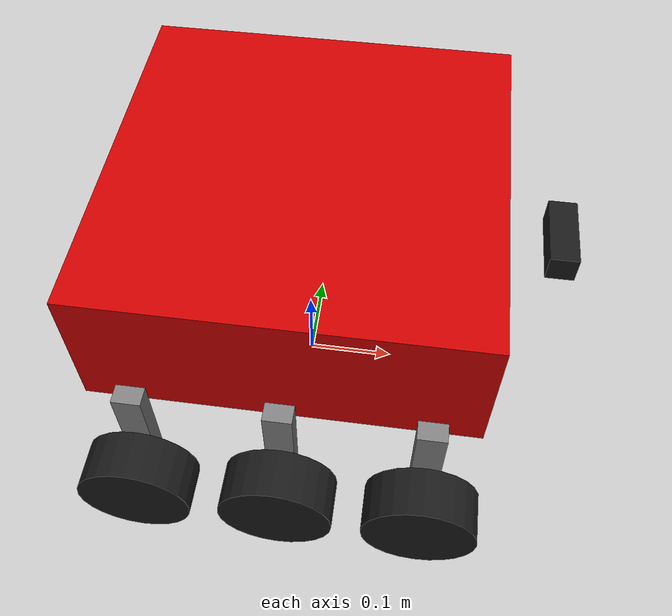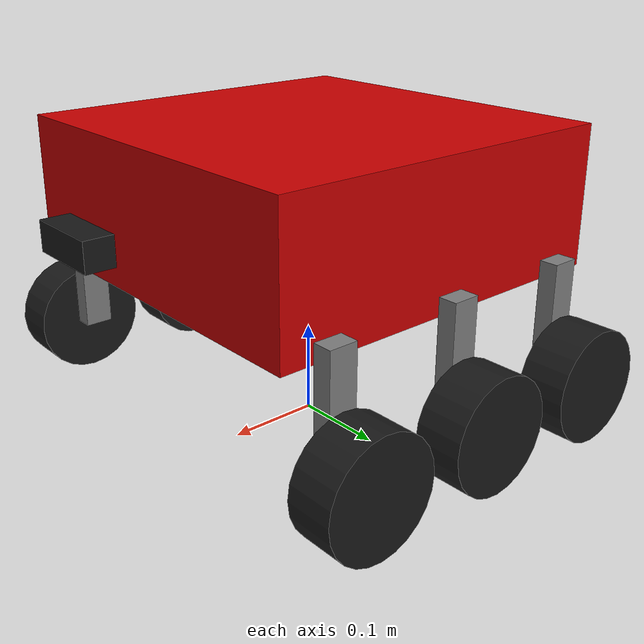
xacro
<?xml version="1.0"?>
<robot xmlns:xacro="http://www.ros.org/wiki/xacro" name="my_robot">

  <!-- Include macro and material definitions -->
  <xacro:include filename="$(find my_robot_description)/urdf/macros.xacro"/>
  <xacro:include filename="$(find my_robot_description)/urdf/materials.xacro"/>
  <xacro:include filename="$(find my_robot_description)/urdf/gazebo.xacro"/>

  <!-- Link name properties for cleaner references -->
  <xacro:property name="base_link_name" value="base_link"/>
  <xacro:property name="base_footprint_name" value="base_footprint"/>

  <!-- Robot Dimensions (xacro properties for easy modification) -->
  <!-- Base dimensions - SQUARE for Mars rover style -->
  <xacro:property name="base_length" value="0.4"/>
  <xacro:property name="base_width" value="0.4"/>
  <xacro:property name="base_height" value="0.15"/>
  <xacro:property name="base_mass" value="5.0"/>

  <!-- Wheel dimensions - Smaller for better proportions -->
  <xacro:property name="wheel_radius" value="0.06"/>
  <xacro:property name="wheel_length" value="0.05"/>
  <xacro:property name="wheel_mass" value="0.6"/>

  <!-- Suspension arm dimensions (rectangular links) -->
  <xacro:property name="arm_length" value="0.03"/>
  <xacro:property name="arm_width" value="0.02"/>
  <xacro:property name="arm_height" value="0.12"/>
  <xacro:property name="arm_mass" value="0.2"/>

  <!-- Arm position offsets: control arm position relative to wheel -->
  <!-- X offset: move arm forward (+) or backward (-) from wheel center -->
  <xacro:property name="arm_x_offset" value="0"/>  <!-- Forward/backward offset -->

  <!-- Arm Z offset control: adjust arm vertical position relative to base -->
  <!-- Default: arm top touches base bottom. Increase to lower arms, decrease to raise -->
  <xacro:property name="arm_z_adjustment" value="0"/>  <!-- Additional vertical offset for arms -->

  <!-- Z offset: arms attach below the base, top of arm flush with bottom of base -->
  <!-- Arm center should be at: -base_height/2 (base bottom) - arm_height/2 (to center of arm) + adjustment -->
  <!-- This ensures arm top is at -base_height/2 (touching base bottom) by default -->
  <xacro:property name="arm_z_offset" value="${-base_height/2 - arm_height/2 + arm_z_adjustment}"/>

  <!-- Wheel positioning -->

  <!-- Z offset: arms attach below the base, top of arm flush with bottom of base -->
  <!-- Arm center should be at: -base_height/2 (base bottom) - arm_height/2 (to center of arm) + adjustment -->
  <!-- This ensures arm top is at -base_height/2 (touching base bottom) by default -->
  <xacro:property name="arm_z_offset" value="${-base_height/2 - arm_height/2 + arm_z_adjustment}"/>
  <!-- Y offset: arms extend from sides of base (outside the base body) -->
  <xacro:property name="arm_y_offset" value="0.21"/>
  <!-- X positions: front, middle, rear (evenly spaced along base length) -->
  <xacro:property name="wheel_x_front" value="0.15"/>
  <xacro:property name="wheel_x_middle" value="0.0"/>
  <xacro:property name="wheel_x_rear" value="-0.15"/>

  <!-- Wheel offset relative to arm link (fine-tune wheel position) -->
  <!-- These control where the wheel attaches to the arm -->
  <!-- LEFT WHEELS -->
  <xacro:property name="wheel_offset_x_left" value="0"/>           <!-- Forward/backward from arm center -->
  <xacro:property name="wheel_offset_y_left" value="0.035"/>           <!-- Outward/inward from arm center -->
  <xacro:property name="wheel_offset_z_left" value="${-arm_height/2}"/>  <!-- Vertical (default: arm bottom) -->

  <!-- RIGHT WHEELS -->
  <xacro:property name="wheel_offset_x_right" value="0"/>          <!-- Forward/backward from arm center -->
  <xacro:property name="wheel_offset_y_right" value="-0.035"/>          <!-- Outward/inward from arm center -->
  <xacro:property name="wheel_offset_z_right" value="${-arm_height/2}"/> <!-- Vertical (default: arm bottom) -->

  <!-- Arm Z offset control: adjust arm vertical position relative to base -->
  <!-- Default: arm top touches base bottom. Increase to lower arms, decrease to raise -->
  <xacro:property name="arm_z_adjustment" value="0.02"/>  <!-- Additional vertical offset for arms -->

  <!-- BASE FOOTPRINT (Ground reference point)   -->
  <!-- This link is at ground level (z=0)        -->
  <link name="${base_footprint_name}">
    <!-- Empty link - just a reference frame -->
  </link>

  <!-- Joint connecting footprint to base_link -->
  <!-- Z offset calculated to place base above ground with wheels touching -->
  <joint name="base_footprint_joint" type="fixed">
    <parent link="${base_footprint_name}"/>
    <child link="${base_link_name}"/>
    <!-- Height = base_height/2 + arm_height + wheel_radius -->
    <origin xyz="0 0 ${base_height/2 + arm_height + wheel_radius}" rpy="0 0 0"/>
  </joint>

  <!-- BASE LINK (Main robot body - SQUARE, RED) -->
  <link name="${base_link_name}">

    <!-- Visual representation -->
    <visual>
      <geometry>
        <box size="${base_length} ${base_width} ${base_height}"/>
      </geometry>
      <origin xyz="0 0 0" rpy="0 0 0"/>
      <material name="red"/>
    </visual>

    <!-- Collision geometry (matches visual) -->
    <collision>
      <geometry>
        <box size="${base_length} ${base_width} ${base_height}"/>
      </geometry>
      <origin xyz="0 0 0" rpy="0 0 0"/>
    </collision>

    <!-- Inertial properties using box macro -->
    <xacro:box_inertia m="${base_mass}" x="${base_length}" y="${base_width}" z="${base_height}"/>

  </link>

  <!-- SUSPENSION ARMS + WHEELS (Mars rover style) -->
  <!-- 6 rectangular arms extending down from base -->
  <!-- 6 wheels attached to bottom of arms         -->

  <!-- LEFT SIDE -->
  <xacro:suspension_wheel_macro prefix="left_front"
                                x_pos="${wheel_x_front}"
                                y_pos="${arm_y_offset}"
                                wheel_offset_x="${wheel_offset_x_left}"
                                wheel_offset_y="${wheel_offset_y_left}"
                                wheel_offset_z="${wheel_offset_z_left}"/>

  <xacro:suspension_wheel_macro prefix="left_middle"
                                x_pos="${wheel_x_middle}"
                                y_pos="${arm_y_offset}"
                                wheel_offset_x="${wheel_offset_x_left}"
                                wheel_offset_y="${wheel_offset_y_left}"
                                wheel_offset_z="${wheel_offset_z_left}"/>

  <xacro:suspension_wheel_macro prefix="left_rear"
                                x_pos="${wheel_x_rear}"
                                y_pos="${arm_y_offset}"
                                wheel_offset_x="${wheel_offset_x_left}"
                                wheel_offset_y="${wheel_offset_y_left}"
                                wheel_offset_z="${wheel_offset_z_left}"/>

  <!-- RIGHT SIDE -->
  <xacro:suspension_wheel_macro prefix="right_front"
                                x_pos="${wheel_x_front}"
                                y_pos="${-arm_y_offset}"
                                wheel_offset_x="${wheel_offset_x_right}"
                                wheel_offset_y="${wheel_offset_y_right}"
                                wheel_offset_z="${wheel_offset_z_right}"/>

  <xacro:suspension_wheel_macro prefix="right_middle"
                                x_pos="${wheel_x_middle}"
                                y_pos="${-arm_y_offset}"
                                wheel_offset_x="${wheel_offset_x_right}"
                                wheel_offset_y="${wheel_offset_y_right}"
                                wheel_offset_z="${wheel_offset_z_right}"/>

  <xacro:suspension_wheel_macro prefix="right_rear"
                                x_pos="${wheel_x_rear}"
                                y_pos="${-arm_y_offset}"
                                wheel_offset_x="${wheel_offset_x_right}"
                                wheel_offset_y="${wheel_offset_y_right}"
                                wheel_offset_z="${wheel_offset_z_right}"/>

  <!-- IMU SENSOR                                 -->
  <!-- Positioned at base_link center of mass     -->

  <!-- IMU dimensions -->
  <xacro:property name="imu_length" value="0.02"/>
  <xacro:property name="imu_width" value="0.02"/>
  <xacro:property name="imu_height" value="0.01"/>
  <xacro:property name="imu_mass" value="0.01"/>

  <!-- IMU Link -->
  <link name="imu_link">
    <!-- Visual representation -->
    <visual>
      <geometry>
        <box size="${imu_length} ${imu_width} ${imu_height}"/>
      </geometry>
      <origin xyz="0 0 0" rpy="0 0 0"/>
      <material name="gray"/>
    </visual>

    <!-- Collision geometry -->
    <collision>
      <geometry>
        <box size="${imu_length} ${imu_width} ${imu_height}"/>
      </geometry>
      <origin xyz="0 0 0" rpy="0 0 0"/>
    </collision>

    <!-- Inertial properties using box macro -->
    <xacro:box_inertia m="${imu_mass}" x="${imu_length}" y="${imu_width}" z="${imu_height}"/>
  </link>

  <!-- Joint connecting base_link to IMU -->
  <!-- IMU positioned at base_link origin (center of mass) -->
  <!-- Identity orientation: X-forward, Y-left, Z-up (REP 105) -->
  <joint name="imu_joint" type="fixed">
    <parent link="${base_link_name}"/>
    <child link="imu_link"/>
    <origin xyz="0 0 0" rpy="0 0 0"/>
  </joint>

  <!-- CAMERA SENSOR                              -->
  <!-- Positioned on front face of base_link      -->
  <!-- Pitched down 15° for ground viewing        -->

  <!-- Camera dimensions -->
  <xacro:property name="camera_length" value="0.03"/>
  <xacro:property name="camera_width" value="0.08"/>
  <xacro:property name="camera_height" value="0.03"/>
  <xacro:property name="camera_mass" value="0.05"/>

  <!-- Camera position offsets relative to base_link -->
  <xacro:property name="camera_offset_x" value="${base_length/2 + camera_length/2 +0.05 }"/>
  <xacro:property name="camera_offset_y" value="0.0"/>
  <xacro:property name="camera_offset_z" value="0.0"/>

  <!-- Camera orientation offsets (Roll, Pitch, Yaw) -->
  <xacro:property name="camera_roll" value="0.0"/>
  <xacro:property name="camera_pitch" value="0.0"/>
  <xacro:property name="camera_yaw" value="0.0"/>

  <!-- Camera Link -->
  <link name="camera_link">
    <!-- Visual representation -->
    <visual>
      <geometry>
        <box size="${camera_length} ${camera_width} ${camera_height}"/>
      </geometry>
      <origin xyz="0 0 0" rpy="0 0 0"/>
      <material name="black"/>
    </visual>

    <!-- Collision geometry -->
    <collision>
      <geometry>
        <box size="${camera_length} ${camera_width} ${camera_height}"/>
      </geometry>
      <origin xyz="0 0 0" rpy="0 0 0"/>
    </collision>

    <!-- Inertial properties using box macro -->
    <xacro:box_inertia m="${camera_mass}" x="${camera_length}" y="${camera_width}" z="${camera_height}"/>
  </link>

  <!-- Joint connecting base_link to camera -->
  <joint name="camera_joint" type="fixed">
    <parent link="${base_link_name}"/>
    <child link="camera_link"/>
    <!-- Uses configurable origin offsets defined at the top of the camera section -->
    <origin xyz="${camera_offset_x} ${camera_offset_y} ${camera_offset_z}" rpy="${camera_roll} ${camera_pitch} ${camera_yaw}"/>
  </joint>

  <!-- Optical link to map Gazebo's camera frame to ROS 2 frame -->
  <link name="my_robot/camera_link/camera"/>
  <joint name="camera_optical_joint" type="fixed">
    <parent link="camera_link"/>
    <child link="my_robot/camera_link/camera"/>
    <origin xyz="0 0 0" rpy="0 0 0"/>
  </joint>

</robot>

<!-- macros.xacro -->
<robot xmlns:xacro="http://www.ros.org/wiki/xacro">

  <!-- Inertia formula constants (physics-based) -->
  <xacro:property name="box_ixx_iyy_izz_factor" value="${1.0/12.0}"/>
  <xacro:property name="cylinder_ixx_izz_factor" value="${1.0/12.0}"/>
  <xacro:property name="cylinder_iyy_factor" value="${1.0/2.0}"/>
  <xacro:property name="sphere_factor" value="${2.0/5.0}"/>

  <xacro:macro name="box_inertia" params="m x y z">
    <inertial>
      <origin xyz="0 0 0" rpy="0 0 0"/>
      <mass value="${m}"/>
      <inertia
        ixx="${box_ixx_iyy_izz_factor * m * (y*y + z*z)}" ixy="0.0" ixz="0.0"
        iyy="${box_ixx_iyy_izz_factor * m * (x*x + z*z)}" iyz="0.0"
        izz="${box_ixx_iyy_izz_factor * m * (x*x + y*y)}"/>
    </inertial>
  </xacro:macro>

  <xacro:macro name="cylinder_inertia" params="m r h">
    <inertial>
      <origin xyz="0 0 0" rpy="0 0 0"/>
      <mass value="${m}"/>
      <inertia
        ixx="${cylinder_ixx_izz_factor * m * (3*r*r + h*h)}" ixy="0.0" ixz="0.0"
        iyy="${cylinder_iyy_factor * m * r*r}" iyz="0.0"
        izz="${cylinder_ixx_izz_factor * m * (3*r*r + h*h)}"/>
    </inertial>
  </xacro:macro>

  <!--
    Sphere Inertia Macro
    Calculates inertia tensor for a sphere-shaped object
    Formula: I = (2/5) * m * r²
    Parameters:
      m - mass (kg)
      r - radius (m)
  -->
  <xacro:macro name="sphere_inertia" params="m r">
    <inertial>
      <origin xyz="0 0 0" rpy="0 0 0"/>
      <mass value="${m}"/>
      <inertia
        ixx="${sphere_factor * m * r * r}" ixy="0.0" ixz="0.0"
        iyy="${sphere_factor * m * r * r}" iyz="0.0"
        izz="${sphere_factor * m * r * r}"/>
    </inertial>
  </xacro:macro>

  <xacro:macro name="suspension_wheel_macro" params="prefix x_pos y_pos wheel_offset_x wheel_offset_y wheel_offset_z">

    <!-- Suspension Arm Link (rectangular, extends downward) -->
    <link name="${prefix}_arm_link">
      <!-- Visual representation -->
      <visual>
        <geometry>
          <box size="${arm_length} ${arm_width} ${arm_height}"/>
        </geometry>
        <origin xyz="0 0 0" rpy="0 0 0"/>
        <material name="gray"/>
      </visual>

      <!-- Collision geometry -->
      <collision>
        <geometry>
          <box size="${arm_length} ${arm_width} ${arm_height}"/>
        </geometry>
        <origin xyz="0 0 0" rpy="0 0 0"/>
      </collision>

      <!-- Inertial properties -->
      <xacro:box_inertia m="${arm_mass}" x="${arm_length}" y="${arm_width}" z="${arm_height}"/>
    </link>

    <!-- Joint connecting base to suspension arm -->
    <!-- Arm positioned with configurable X offset from wheel position -->
    <joint name="${prefix}_arm_joint" type="fixed">
      <parent link="${base_link_name}"/>
      <child link="${prefix}_arm_link"/>
      <origin xyz="${x_pos + arm_x_offset} ${y_pos} ${arm_z_offset}" rpy="0 0 0"/>
    </joint>

    <!-- Wheel Link -->
    <link name="${prefix}_wheel_link">
      <!-- Visual representation (cylinder for appearance) -->
      <visual>
        <geometry>
          <cylinder radius="${wheel_radius}" length="${wheel_length}"/>
        </geometry>
        <origin xyz="0 0 0" rpy="${pi/2} 0 0"/>
        <material name="black"/>
      </visual>

      <!-- Collision geometry (sphere for better simulation physics) -->
      <collision>
        <geometry>
          <sphere radius="${wheel_radius}"/>
        </geometry>
        <origin xyz="0 0 0" rpy="0 0 0"/>
      </collision>

      <!-- Inertial properties (using sphere for better simulation stability) -->
      <xacro:sphere_inertia m="${wheel_mass}" r="${wheel_radius}"/>
    </link>

    <!-- Joint connecting suspension arm to wheel -->
    <!-- Wheel positioned relative to arm using offset properties -->
    <!-- Compensates for arm_x_offset to keep wheel at desired x_pos -->
    <joint name="${prefix}_wheel_joint" type="continuous">
      <parent link="${prefix}_arm_link"/>
      <child link="${prefix}_wheel_link"/>
      <origin xyz="${wheel_offset_x - arm_x_offset} ${wheel_offset_y} ${wheel_offset_z}" rpy="0 0 0"/>
      <axis xyz="0 1 0"/>
    </joint>

  </xacro:macro>

</robot>

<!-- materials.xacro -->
<robot xmlns:xacro="http://www.ros.org/wiki/xacro">

  <!-- Red color for the base (Mars rover style) -->
  <material name="red">
    <color rgba="0.8 0.0 0.0 1.0"/>
  </material>

  <!-- Black color for wheels -->
  <material name="black">
    <color rgba="0.1 0.1 0.1 1.0"/>
  </material>

  <!-- Gray color for structural components -->
  <material name="gray">
    <color rgba="0.5 0.5 0.5 1.0"/>
  </material>

</robot>
